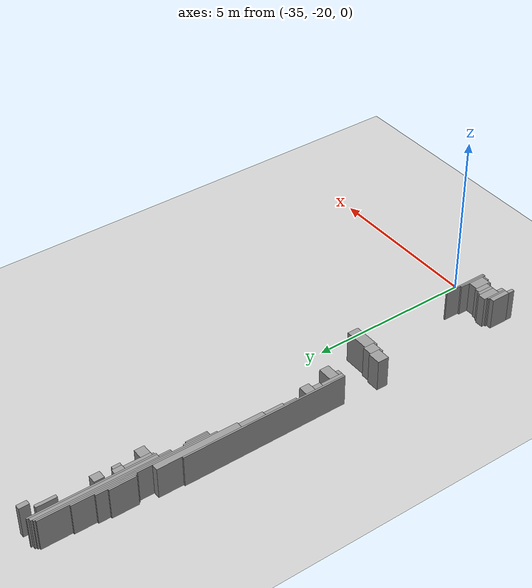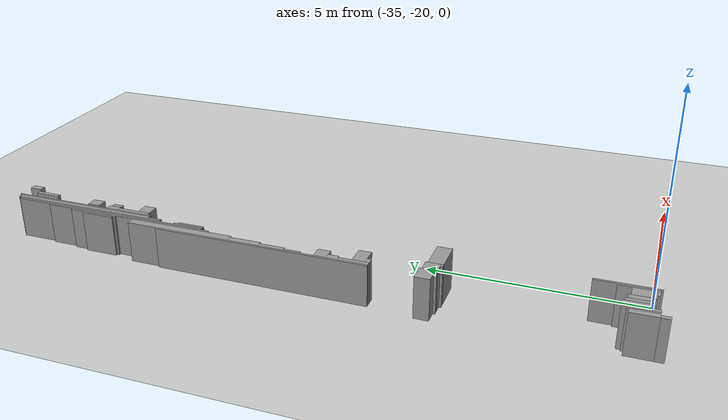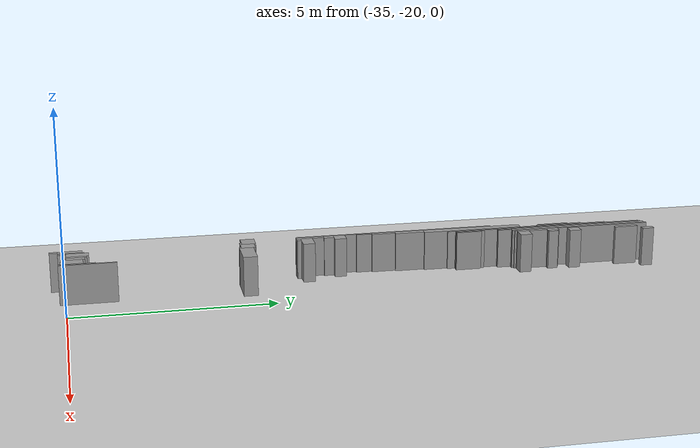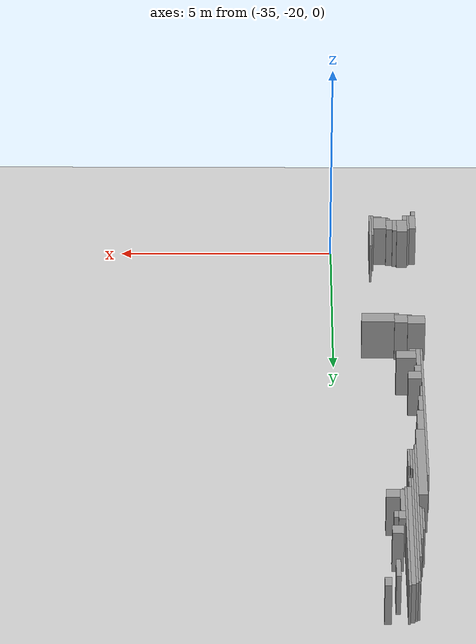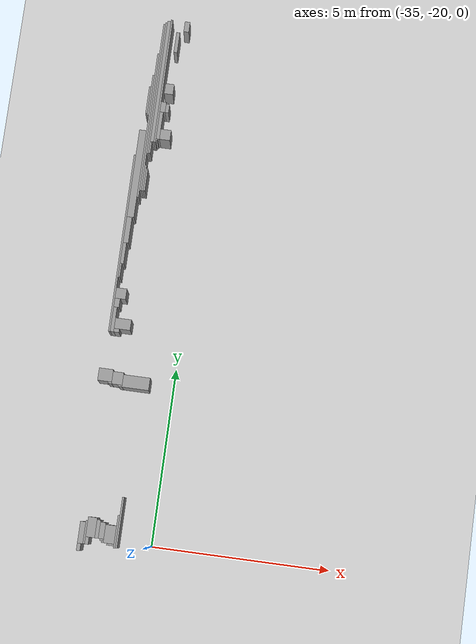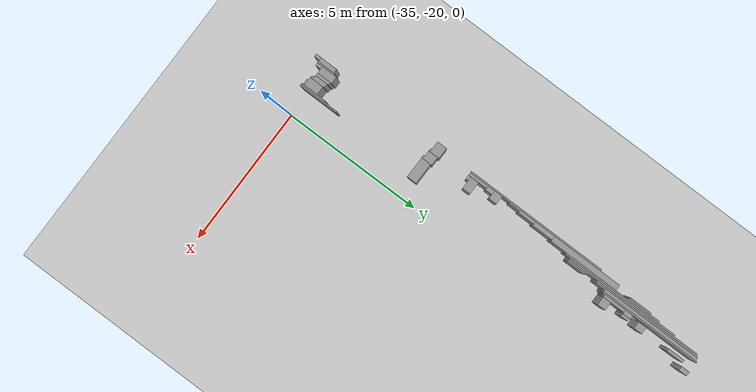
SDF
<sdf version="1.6">
 <world name="default">
  <include><uri>model://ground_plane</uri></include>
  <include><uri>model://sun</uri></include>
  <model name="wall_384">
   <static>1</static>
   <pose>-36.474999999999994 -6.8749999999999964 0.5 0 0 0</pose>
   <link name="link">
    <collision name="collision">
     <geometry><box><size>0.05 3.6500000000000004 1.0</size></box></geometry>
    </collision>
    <visual name="visual">
     <geometry><box><size>0.05 3.6500000000000004 1.0</size></box></geometry>
     <material>
      <script><uri>file://media/materials/scripts/gazebo.material</uri><name>Gazebo/Grey</name></script>
     </material>
    </visual>
   </link>
  </model>
  <model name="wall_385">
   <static>1</static>
   <pose>-36.025 -5.199999999999999 0.5 0 0 0</pose>
   <link name="link">
    <collision name="collision">
     <geometry><box><size>0.15000000000000002 0.30000000000000004 1.0</size></box></geometry>
    </collision>
    <visual name="visual">
     <geometry><box><size>0.15000000000000002 0.30000000000000004 1.0</size></box></geometry>
     <material>
      <script><uri>file://media/materials/scripts/gazebo.material</uri><name>Gazebo/Grey</name></script>
     </material>
    </visual>
   </link>
  </model>
  <model name="wall_387">
   <static>1</static>
   <pose>-36.55 -6.899999999999999 0.5 0 0 0</pose>
   <link name="link">
    <collision name="collision"><geometry><box><size>0.1 3.6 1.0</size></box></geometry></collision>
    <visual name="visual">
     <geometry><box><size>0.1 3.6 1.0</size></box></geometry>
     <material>
      <script><uri>file://media/materials/scripts/gazebo.material</uri><name>Gazebo/Grey</name></script>
     </material>
    </visual>
   </link>
  </model>
  <model name="wall_390">
   <static>1</static>
   <pose>-36.625 -7.099999999999998 0.5 0 0 0</pose>
   <link name="link">
    <collision name="collision">
     <geometry><box><size>0.05 3.9000000000000004 1.0</size></box></geometry>
    </collision>
    <visual name="visual">
     <geometry><box><size>0.05 3.9000000000000004 1.0</size></box></geometry>
     <material>
      <script><uri>file://media/materials/scripts/gazebo.material</uri><name>Gazebo/Grey</name></script>
     </material>
    </visual>
   </link>
  </model>
  <model name="wall_392">
   <static>1</static>
   <pose>-36.675 -7.674999999999997 0.5 0 0 0</pose>
   <link name="link">
    <collision name="collision"><geometry><box><size>0.05 4.95 1.0</size></box></geometry></collision>
    <visual name="visual">
     <geometry><box><size>0.05 4.95 1.0</size></box></geometry>
     <material>
      <script><uri>file://media/materials/scripts/gazebo.material</uri><name>Gazebo/Grey</name></script>
     </material>
    </visual>
   </link>
  </model>
  <model name="wall_396">
   <static>1</static>
   <pose>-36.25 -5.699999999999999 0.5 0 0 0</pose>
   <link name="link">
    <collision name="collision">
     <geometry><box><size>0.1 0.6000000000000001 1.0</size></box></geometry>
    </collision>
    <visual name="visual">
     <geometry><box><size>0.1 0.6000000000000001 1.0</size></box></geometry>
     <material>
      <script><uri>file://media/materials/scripts/gazebo.material</uri><name>Gazebo/Grey</name></script>
     </material>
    </visual>
   </link>
  </model>
  <model name="wall_405">
   <static>1</static>
   <pose>-36.724999999999994 -8.224999999999998 0.5 0 0 0</pose>
   <link name="link">
    <collision name="collision"><geometry><box><size>0.05 4.25 1.0</size></box></geometry></collision>
    <visual name="visual">
     <geometry><box><size>0.05 4.25 1.0</size></box></geometry>
     <material>
      <script><uri>file://media/materials/scripts/gazebo.material</uri><name>Gazebo/Grey</name></script>
     </material>
    </visual>
   </link>
  </model>
  <model name="wall_408">
   <static>1</static>
   <pose>-36.775 -7.349999999999998 0.5 0 0 0</pose>
   <link name="link">
    <collision name="collision">
     <geometry><box><size>0.05 1.2000000000000002 1.0</size></box></geometry>
    </collision>
    <visual name="visual">
     <geometry><box><size>0.05 1.2000000000000002 1.0</size></box></geometry>
     <material>
      <script><uri>file://media/materials/scripts/gazebo.material</uri><name>Gazebo/Grey</name></script>
     </material>
    </visual>
   </link>
  </model>
  <model name="wall_411">
   <static>1</static>
   <pose>-36.275 -7.099999999999998 0.5 0 0 0</pose>
   <link name="link">
    <collision name="collision">
     <geometry><box><size>0.25 0.30000000000000004 1.0</size></box></geometry>
    </collision>
    <visual name="visual">
     <geometry><box><size>0.25 0.30000000000000004 1.0</size></box></geometry>
     <material>
      <script><uri>file://media/materials/scripts/gazebo.material</uri><name>Gazebo/Grey</name></script>
     </material>
    </visual>
   </link>
  </model>
  <model name="wall_414">
   <static>1</static>
   <pose>-36.824999999999996 -7.4999999999999964 0.5 0 0 0</pose>
   <link name="link">
    <collision name="collision"><geometry><box><size>0.05 0.8 1.0</size></box></geometry></collision>
    <visual name="visual">
     <geometry><box><size>0.05 0.8 1.0</size></box></geometry>
     <material>
      <script><uri>file://media/materials/scripts/gazebo.material</uri><name>Gazebo/Grey</name></script>
     </material>
    </visual>
   </link>
  </model>
  <model name="wall_418">
   <static>1</static>
   <pose>-36.375 -7.649999999999999 0.5 0 0 0</pose>
   <link name="link">
    <collision name="collision">
     <geometry><box><size>0.15000000000000002 0.30000000000000004 1.0</size></box></geometry>
    </collision>
    <visual name="visual">
     <geometry><box><size>0.15000000000000002 0.30000000000000004 1.0</size></box></geometry>
     <material>
      <script><uri>file://media/materials/scripts/gazebo.material</uri><name>Gazebo/Grey</name></script>
     </material>
    </visual>
   </link>
  </model>
  <model name="wall_419">
   <static>1</static>
   <pose>-36.25 -7.674999999999997 0.5 0 0 0</pose>
   <link name="link">
    <collision name="collision"><geometry><box><size>0.1 0.25 1.0</size></box></geometry></collision>
    <visual name="visual">
     <geometry><box><size>0.1 0.25 1.0</size></box></geometry>
     <material>
      <script><uri>file://media/materials/scripts/gazebo.material</uri><name>Gazebo/Grey</name></script>
     </material>
    </visual>
   </link>
  </model>
  <model name="wall_422">
   <static>1</static>
   <pose>-36.4 -8.2 0.5 0 0 0</pose>
   <link name="link">
    <collision name="collision"><geometry><box><size>0.1 0.8 1.0</size></box></geometry></collision>
    <visual name="visual">
     <geometry><box><size>0.1 0.8 1.0</size></box></geometry>
     <material>
      <script><uri>file://media/materials/scripts/gazebo.material</uri><name>Gazebo/Grey</name></script>
     </material>
    </visual>
   </link>
  </model>
  <model name="wall_429">
   <static>1</static>
   <pose>-36.199999999999996 -8.45 0.5 0 0 0</pose>
   <link name="link">
    <collision name="collision">
     <geometry><box><size>0.30000000000000004 0.30000000000000004 1.0</size></box></geometry>
    </collision>
    <visual name="visual">
     <geometry><box><size>0.30000000000000004 0.30000000000000004 1.0</size></box></geometry>
     <material>
      <script><uri>file://media/materials/scripts/gazebo.material</uri><name>Gazebo/Grey</name></script>
     </material>
    </visual>
   </link>
  </model>
  <model name="wall_430">
   <static>1</static>
   <pose>-36.849999999999994 -9.674999999999997 0.5 0 0 0</pose>
   <link name="link">
    <collision name="collision">
     <geometry><box><size>0.2 2.5500000000000003 1.0</size></box></geometry>
    </collision>
    <visual name="visual">
     <geometry><box><size>0.2 2.5500000000000003 1.0</size></box></geometry>
     <material>
      <script><uri>file://media/materials/scripts/gazebo.material</uri><name>Gazebo/Grey</name></script>
     </material>
    </visual>
   </link>
  </model>
  <model name="wall_435">
   <static>1</static>
   <pose>-36.425 -8.625 0.5 0 0 0</pose>
   <link name="link">
    <collision name="collision"><geometry><box><size>0.05 0.05 1.0</size></box></geometry></collision>
    <visual name="visual">
     <geometry><box><size>0.05 0.05 1.0</size></box></geometry>
     <material>
      <script><uri>file://media/materials/scripts/gazebo.material</uri><name>Gazebo/Grey</name></script>
     </material>
    </visual>
   </link>
  </model>
  <model name="wall_438">
   <static>1</static>
   <pose>-36.574999999999996 -8.875 0.5 0 0 0</pose>
   <link name="link">
    <collision name="collision">
     <geometry><box><size>0.05 0.35000000000000003 1.0</size></box></geometry>
    </collision>
    <visual name="visual">
     <geometry><box><size>0.05 0.35000000000000003 1.0</size></box></geometry>
     <material>
      <script><uri>file://media/materials/scripts/gazebo.material</uri><name>Gazebo/Grey</name></script>
     </material>
    </visual>
   </link>
  </model>
  <model name="wall_442">
   <static>1</static>
   <pose>-36.974999999999994 -11.7 0.5 0 0 0</pose>
   <link name="link">
    <collision name="collision">
     <geometry><box><size>0.05 5.1000000000000005 1.0</size></box></geometry>
    </collision>
    <visual name="visual">
     <geometry><box><size>0.05 5.1000000000000005 1.0</size></box></geometry>
     <material>
      <script><uri>file://media/materials/scripts/gazebo.material</uri><name>Gazebo/Grey</name></script>
     </material>
    </visual>
   </link>
  </model>
  <model name="wall_446">
   <static>1</static>
   <pose>-36.625 -9.774999999999999 0.5 0 0 0</pose>
   <link name="link">
    <collision name="collision"><geometry><box><size>0.05 0.75 1.0</size></box></geometry></collision>
    <visual name="visual">
     <geometry><box><size>0.05 0.75 1.0</size></box></geometry>
     <material>
      <script><uri>file://media/materials/scripts/gazebo.material</uri><name>Gazebo/Grey</name></script>
     </material>
    </visual>
   </link>
  </model>
  <model name="wall_448">
   <static>1</static>
   <pose>-36.574999999999996 -9.825 0.5 0 0 0</pose>
   <link name="link">
    <collision name="collision"><geometry><box><size>0.05 0.65 1.0</size></box></geometry></collision>
    <visual name="visual">
     <geometry><box><size>0.05 0.65 1.0</size></box></geometry>
     <material>
      <script><uri>file://media/materials/scripts/gazebo.material</uri><name>Gazebo/Grey</name></script>
     </material>
    </visual>
   </link>
  </model>
  <model name="wall_458">
   <static>1</static>
   <pose>-36.875 -11.325 0.5 0 0 0</pose>
   <link name="link">
    <collision name="collision">
     <geometry><box><size>0.15000000000000002 0.75 1.0</size></box></geometry>
    </collision>
    <visual name="visual">
     <geometry><box><size>0.15000000000000002 0.75 1.0</size></box></geometry>
     <material>
      <script><uri>file://media/materials/scripts/gazebo.material</uri><name>Gazebo/Grey</name></script>
     </material>
    </visual>
   </link>
  </model>
  <model name="wall_463">
   <static>1</static>
   <pose>-36.9 -11.999999999999998 0.5 0 0 0</pose>
   <link name="link">
    <collision name="collision">
     <geometry><box><size>0.1 0.6000000000000001 1.0</size></box></geometry>
    </collision>
    <visual name="visual">
     <geometry><box><size>0.1 0.6000000000000001 1.0</size></box></geometry>
     <material>
      <script><uri>file://media/materials/scripts/gazebo.material</uri><name>Gazebo/Grey</name></script>
     </material>
    </visual>
   </link>
  </model>
  <model name="wall_469">
   <static>1</static>
   <pose>-36.925 -12.499999999999998 0.5 0 0 0</pose>
   <link name="link">
    <collision name="collision"><geometry><box><size>0.05 0.4 1.0</size></box></geometry></collision>
    <visual name="visual">
     <geometry><box><size>0.05 0.4 1.0</size></box></geometry>
     <material>
      <script><uri>file://media/materials/scripts/gazebo.material</uri><name>Gazebo/Grey</name></script>
     </material>
    </visual>
   </link>
  </model>
  <model name="wall_478">
   <static>1</static>
   <pose>-36.8 -13.149999999999999 0.5 0 0 0</pose>
   <link name="link">
    <collision name="collision">
     <geometry><box><size>0.30000000000000004 0.30000000000000004 1.0</size></box></geometry>
    </collision>
    <visual name="visual">
     <geometry><box><size>0.30000000000000004 0.30000000000000004 1.0</size></box></geometry>
     <material>
      <script><uri>file://media/materials/scripts/gazebo.material</uri><name>Gazebo/Grey</name></script>
     </material>
    </visual>
   </link>
  </model>
  <model name="wall_479">
   <static>1</static>
   <pose>-36.875 -13.424999999999999 0.5 0 0 0</pose>
   <link name="link">
    <collision name="collision">
     <geometry><box><size>0.15000000000000002 0.25 1.0</size></box></geometry>
    </collision>
    <visual name="visual">
     <geometry><box><size>0.15000000000000002 0.25 1.0</size></box></geometry>
     <material>
      <script><uri>file://media/materials/scripts/gazebo.material</uri><name>Gazebo/Grey</name></script>
     </material>
    </visual>
   </link>
  </model>
  <model name="wall_481">
   <static>1</static>
   <pose>-36.9 -13.899999999999999 0.5 0 0 0</pose>
   <link name="link">
    <collision name="collision">
     <geometry><box><size>0.1 0.7000000000000001 1.0</size></box></geometry>
    </collision>
    <visual name="visual">
     <geometry><box><size>0.1 0.7000000000000001 1.0</size></box></geometry>
     <material>
      <script><uri>file://media/materials/scripts/gazebo.material</uri><name>Gazebo/Grey</name></script>
     </material>
    </visual>
   </link>
  </model>
  <model name="wall_487">
   <static>1</static>
   <pose>-36.625 -13.999999999999998 0.5 0 0 0</pose>
   <link name="link">
    <collision name="collision">
     <geometry><box><size>0.45 0.30000000000000004 1.0</size></box></geometry>
    </collision>
    <visual name="visual">
     <geometry><box><size>0.45 0.30000000000000004 1.0</size></box></geometry>
     <material>
      <script><uri>file://media/materials/scripts/gazebo.material</uri><name>Gazebo/Grey</name></script>
     </material>
    </visual>
   </link>
  </model>
  <model name="wall_496">
   <static>1</static>
   <pose>-36.775 -14.2 0.5 0 0 0</pose>
   <link name="link">
    <collision name="collision">
     <geometry><box><size>0.15000000000000002 0.1 1.0</size></box></geometry>
    </collision>
    <visual name="visual">
     <geometry><box><size>0.15000000000000002 0.1 1.0</size></box></geometry>
     <material>
      <script><uri>file://media/materials/scripts/gazebo.material</uri><name>Gazebo/Grey</name></script>
     </material>
    </visual>
   </link>
  </model>
  <model name="wall_509">
   <static>1</static>
   <pose>-36.9 -15.474999999999998 0.5 0 0 0</pose>
   <link name="link">
    <collision name="collision">
     <geometry><box><size>0.4 0.35000000000000003 1.0</size></box></geometry>
    </collision>
    <visual name="visual">
     <geometry><box><size>0.4 0.35000000000000003 1.0</size></box></geometry>
     <material>
      <script><uri>file://media/materials/scripts/gazebo.material</uri><name>Gazebo/Grey</name></script>
     </material>
    </visual>
   </link>
  </model>
  <model name="wall_510">
   <static>1</static>
   <pose>-36.55 -15.524999999999999 0.5 0 0 0</pose>
   <link name="link">
    <collision name="collision">
     <geometry><box><size>0.30000000000000004 0.35000000000000003 1.0</size></box></geometry>
    </collision>
    <visual name="visual">
     <geometry><box><size>0.30000000000000004 0.35000000000000003 1.0</size></box></geometry>
     <material>
      <script><uri>file://media/materials/scripts/gazebo.material</uri><name>Gazebo/Grey</name></script>
     </material>
    </visual>
   </link>
  </model>
  <model name="wall_511">
   <static>1</static>
   <pose>-36.025 -15.575 0.5 0 0 0</pose>
   <link name="link">
    <collision name="collision">
     <geometry><box><size>0.75 0.35000000000000003 1.0</size></box></geometry>
    </collision>
    <visual name="visual">
     <geometry><box><size>0.75 0.35000000000000003 1.0</size></box></geometry>
     <material>
      <script><uri>file://media/materials/scripts/gazebo.material</uri><name>Gazebo/Grey</name></script>
     </material>
    </visual>
   </link>
  </model>
  <model name="wall_514">
   <static>1</static>
   <pose>-36.75 -15.674999999999999 0.5 0 0 0</pose>
   <link name="link">
    <collision name="collision"><geometry><box><size>0.1 0.05 1.0</size></box></geometry></collision>
    <visual name="visual">
     <geometry><box><size>0.1 0.05 1.0</size></box></geometry>
     <material>
      <script><uri>file://media/materials/scripts/gazebo.material</uri><name>Gazebo/Grey</name></script>
     </material>
    </visual>
   </link>
  </model>
  <model name="wall_515">
   <static>1</static>
   <pose>-36.449999999999996 -15.724999999999998 0.5 0 0 0</pose>
   <link name="link">
    <collision name="collision"><geometry><box><size>0.1 0.05 1.0</size></box></geometry></collision>
    <visual name="visual">
     <geometry><box><size>0.1 0.05 1.0</size></box></geometry>
     <material>
      <script><uri>file://media/materials/scripts/gazebo.material</uri><name>Gazebo/Grey</name></script>
     </material>
    </visual>
   </link>
  </model>
  <model name="wall_553">
   <static>1</static>
   <pose>-35.925 -19.45 0.5 0 0 0</pose>
   <link name="link">
    <collision name="collision">
     <geometry><box><size>0.05 1.4000000000000001 1.0</size></box></geometry>
    </collision>
    <visual name="visual">
     <geometry><box><size>0.05 1.4000000000000001 1.0</size></box></geometry>
     <material>
      <script><uri>file://media/materials/scripts/gazebo.material</uri><name>Gazebo/Grey</name></script>
     </material>
    </visual>
   </link>
  </model>
  <model name="wall_556">
   <static>1</static>
   <pose>-35.974999999999994 -19.7 0.5 0 0 0</pose>
   <link name="link">
    <collision name="collision"><geometry><box><size>0.05 0.9 1.0</size></box></geometry></collision>
    <visual name="visual">
     <geometry><box><size>0.05 0.9 1.0</size></box></geometry>
     <material>
      <script><uri>file://media/materials/scripts/gazebo.material</uri><name>Gazebo/Grey</name></script>
     </material>
    </visual>
   </link>
  </model>
  <model name="wall_558">
   <static>1</static>
   <pose>-36.675 -19.674999999999997 0.5 0 0 0</pose>
   <link name="link">
    <collision name="collision"><geometry><box><size>0.25 0.55 1.0</size></box></geometry></collision>
    <visual name="visual">
     <geometry><box><size>0.25 0.55 1.0</size></box></geometry>
     <material>
      <script><uri>file://media/materials/scripts/gazebo.material</uri><name>Gazebo/Grey</name></script>
     </material>
    </visual>
   </link>
  </model>
  <model name="wall_560">
   <static>1</static>
   <pose>-36.5 -19.7 0.5 0 0 0</pose>
   <link name="link">
    <collision name="collision"><geometry><box><size>0.1 0.5 1.0</size></box></geometry></collision>
    <visual name="visual">
     <geometry><box><size>0.1 0.5 1.0</size></box></geometry>
     <material>
      <script><uri>file://media/materials/scripts/gazebo.material</uri><name>Gazebo/Grey</name></script>
     </material>
    </visual>
   </link>
  </model>
  <model name="wall_561">
   <static>1</static>
   <pose>-36.824999999999996 -19.825 0.5 0 0 0</pose>
   <link name="link">
    <collision name="collision"><geometry><box><size>0.05 0.65 1.0</size></box></geometry></collision>
    <visual name="visual">
     <geometry><box><size>0.05 0.65 1.0</size></box></geometry>
     <material>
      <script><uri>file://media/materials/scripts/gazebo.material</uri><name>Gazebo/Grey</name></script>
     </material>
    </visual>
   </link>
  </model>
  <model name="wall_562">
   <static>1</static>
   <pose>-36.375 -19.724999999999998 0.5 0 0 0</pose>
   <link name="link">
    <collision name="collision">
     <geometry><box><size>0.15000000000000002 0.45 1.0</size></box></geometry>
    </collision>
    <visual name="visual">
     <geometry><box><size>0.15000000000000002 0.45 1.0</size></box></geometry>
     <material>
      <script><uri>file://media/materials/scripts/gazebo.material</uri><name>Gazebo/Grey</name></script>
     </material>
    </visual>
   </link>
  </model>
  <model name="wall_564">
   <static>1</static>
   <pose>-36.925 -19.849999999999998 0.5 0 0 0</pose>
   <link name="link">
    <collision name="collision">
     <geometry><box><size>0.15000000000000002 0.6000000000000001 1.0</size></box></geometry>
    </collision>
    <visual name="visual">
     <geometry><box><size>0.15000000000000002 0.6000000000000001 1.0</size></box></geometry>
     <material>
      <script><uri>file://media/materials/scripts/gazebo.material</uri><name>Gazebo/Grey</name></script>
     </material>
    </visual>
   </link>
  </model>
  <model name="wall_565">
   <static>1</static>
   <pose>-36.15 -19.799999999999997 0.5 0 0 0</pose>
   <link name="link">
    <collision name="collision">
     <geometry><box><size>0.30000000000000004 0.5 1.0</size></box></geometry>
    </collision>
    <visual name="visual">
     <geometry><box><size>0.30000000000000004 0.5 1.0</size></box></geometry>
     <material>
      <script><uri>file://media/materials/scripts/gazebo.material</uri><name>Gazebo/Grey</name></script>
     </material>
    </visual>
   </link>
  </model>
  <model name="wall_572">
   <static>1</static>
   <pose>-36.75 -20.049999999999997 0.5 0 0 0</pose>
   <link name="link">
    <collision name="collision"><geometry><box><size>0.1 0.2 1.0</size></box></geometry></collision>
    <visual name="visual">
     <geometry><box><size>0.1 0.2 1.0</size></box></geometry>
     <material>
      <script><uri>file://media/materials/scripts/gazebo.material</uri><name>Gazebo/Grey</name></script>
     </material>
    </visual>
   </link>
  </model>
  <model name="wall_573">
   <static>1</static>
   <pose>-36.349999999999994 -19.974999999999998 0.5 0 0 0</pose>
   <link name="link">
    <collision name="collision"><geometry><box><size>0.1 0.05 1.0</size></box></geometry></collision>
    <visual name="visual">
     <geometry><box><size>0.1 0.05 1.0</size></box></geometry>
     <material>
      <script><uri>file://media/materials/scripts/gazebo.material</uri><name>Gazebo/Grey</name></script>
     </material>
    </visual>
   </link>
  </model>
  <model name="wall_575">
   <static>1</static>
   <pose>-36.324999999999996 -20.025 0.5 0 0 0</pose>
   <link name="link">
    <collision name="collision"><geometry><box><size>0.05 0.05 1.0</size></box></geometry></collision>
    <visual name="visual">
     <geometry><box><size>0.05 0.05 1.0</size></box></geometry>
     <material>
      <script><uri>file://media/materials/scripts/gazebo.material</uri><name>Gazebo/Grey</name></script>
     </material>
    </visual>
   </link>
  </model>
  <model name="wall_576">
   <static>1</static>
   <pose>-36.099999999999994 -20.075 0.5 0 0 0</pose>
   <link name="link">
    <collision name="collision"><geometry><box><size>0.2 0.05 1.0</size></box></geometry></collision>
    <visual name="visual">
     <geometry><box><size>0.2 0.05 1.0</size></box></geometry>
     <material>
      <script><uri>file://media/materials/scripts/gazebo.material</uri><name>Gazebo/Grey</name></script>
     </material>
    </visual>
   </link>
  </model>
  <model name="wall_579">
   <static>1</static>
   <pose>-36.949999999999996 -20.25 0.5 0 0 0</pose>
   <link name="link">
    <collision name="collision"><geometry><box><size>0.1 0.2 1.0</size></box></geometry></collision>
    <visual name="visual">
     <geometry><box><size>0.1 0.2 1.0</size></box></geometry>
     <material>
      <script><uri>file://media/materials/scripts/gazebo.material</uri><name>Gazebo/Grey</name></script>
     </material>
    </visual>
   </link>
  </model>
 </world>
</sdf>
